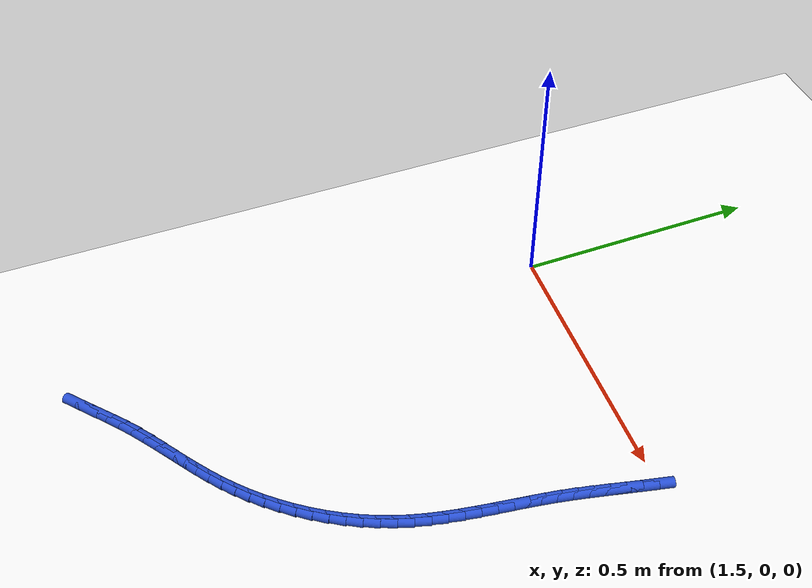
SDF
<sdf version="1.6">
 <world name="default">
  <model name="ground_plane">
   <static>1</static>
   <link name="link">
    <collision name="collision">
     <geometry><plane><normal>0 0 1</normal><size>100 100</size></plane></geometry>
     <surface><friction><ode><mu>100</mu><mu2>50</mu2></ode></friction></surface>
    </collision>
    <visual name="visual">
     <cast_shadows>0</cast_shadows>
     <geometry><plane><normal>0 0 1</normal><size>100 100</size></plane></geometry>
     <material>
      <script><uri>file://media/materials/scripts/gazebo.material</uri><name>Gazebo/WhiteGlow</name></script>
     </material>
    </visual>
   </link>
  </model>
  <model name="line">
   <link name="link_116">
    <pose>2.0480571740696454 -0.013648288597671651 0.01 0 1.57 1.3446775464707388</pose>
    <collision name="collision">
     <geometry><cylinder><radius>0.01</radius><length>0.08</length></cylinder></geometry>
    </collision>
    <visual name="visual">
     <material>
      <script><name>Gazebo/Blue</name><uri>file://media/materials/scripts/gazebo.material</uri></script>
     </material>
     <geometry><cylinder><radius>0.01</radius><length>0.08</length></cylinder></geometry>
    </visual>
   </link>
   <link name="link_117">
    <pose>2.0416587559661163 -0.041461081610284015 0.01 0 1.57 1.3390730540408509</pose>
    <collision name="collision">
     <geometry><cylinder><radius>0.01</radius><length>0.08</length></cylinder></geometry>
    </collision>
    <visual name="visual">
     <material>
      <script><name>Gazebo/Blue</name><uri>file://media/materials/scripts/gazebo.material</uri></script>
     </material>
     <geometry><cylinder><radius>0.01</radius><length>0.08</length></cylinder></geometry>
    </visual>
   </link>
   <link name="link_118">
    <pose>2.0351001141684155 -0.06925643036525464 0.01 0 1.57 1.3393813105081425</pose>
    <collision name="collision">
     <geometry><cylinder><radius>0.01</radius><length>0.08</length></cylinder></geometry>
    </collision>
    <visual name="visual">
     <material>
      <script><name>Gazebo/Blue</name><uri>file://media/materials/scripts/gazebo.material</uri></script>
     </material>
     <geometry><cylinder><radius>0.01</radius><length>0.08</length></cylinder></geometry>
    </visual>
   </link>
   <link name="link_119">
    <pose>2.0285468888910034 -0.09706717560295709 0.01 0 1.57 1.3455939503205416</pose>
    <collision name="collision">
     <geometry><cylinder><radius>0.01</radius><length>0.08</length></cylinder></geometry>
    </collision>
    <visual name="visual">
     <material>
      <script><name>Gazebo/Blue</name><uri>file://media/materials/scripts/gazebo.material</uri></script>
     </material>
     <geometry><cylinder><radius>0.01</radius><length>0.08</length></cylinder></geometry>
    </visual>
   </link>
   <link name="link_120">
    <pose>2.02216472034834 -0.12492615806376432 0.01 0 1.57 1.3577083065046691</pose>
    <collision name="collision">
     <geometry><cylinder><radius>0.01</radius><length>0.08</length></cylinder></geometry>
    </collision>
    <visual name="visual">
     <material>
      <script><name>Gazebo/Blue</name><uri>file://media/materials/scripts/gazebo.material</uri></script>
     </material>
     <geometry><cylinder><radius>0.01</radius><length>0.08</length></cylinder></geometry>
    </visual>
   </link>
   <link name="link_121">
    <pose>2.0161192487548862 -0.15286621848804924 0.01 0 1.57 1.3757191397063155</pose>
    <collision name="collision">
     <geometry><cylinder><radius>0.01</radius><length>0.08</length></cylinder></geometry>
    </collision>
    <visual name="visual">
     <material>
      <script><name>Gazebo/Blue</name><uri>file://media/materials/scripts/gazebo.material</uri></script>
     </material>
     <geometry><cylinder><radius>0.01</radius><length>0.08</length></cylinder></geometry>
    </visual>
   </link>
   <link name="link_122">
    <pose>2.010576065039591 -0.18092018661406634 0.01 0 1.57 1.3966491084667396</pose>
    <collision name="collision">
     <geometry><cylinder><radius>0.01</radius><length>0.08</length></cylinder></geometry>
    </collision>
    <visual name="visual">
     <material>
      <script><name>Gazebo/Blue</name><uri>file://media/materials/scripts/gazebo.material</uri></script>
     </material>
     <geometry><cylinder><radius>0.01</radius><length>0.08</length></cylinder></geometry>
    </visual>
   </link>
   <link name="link_123">
    <pose>2.005617985230197 -0.20910241414621492 0.01 0 1.57 1.411480942432256</pose>
    <collision name="collision">
     <geometry><cylinder><radius>0.01</radius><length>0.08</length></cylinder></geometry>
    </collision>
    <visual name="visual">
     <material>
      <script><name>Gazebo/Blue</name><uri>file://media/materials/scripts/gazebo.material</uri></script>
     </material>
     <geometry><cylinder><radius>0.01</radius><length>0.08</length></cylinder></geometry>
    </visual>
   </link>
   <link name="link_124">
    <pose>2.001075869725253 -0.2373710081473719 0.01 0 1.57 1.4185322276476682</pose>
    <collision name="collision">
     <geometry><cylinder><radius>0.01</radius><length>0.08</length></cylinder></geometry>
    </collision>
    <visual name="visual">
     <material>
      <script><name>Gazebo/Blue</name><uri>file://media/materials/scripts/gazebo.material</uri></script>
     </material>
     <geometry><cylinder><radius>0.01</radius><length>0.08</length></cylinder></geometry>
    </visual>
   </link>
   <link name="link_125">
    <pose>1.996732813906843 -0.2656734129846167 0.01 0 1.57 1.4178165346337697</pose>
    <collision name="collision">
     <geometry><cylinder><radius>0.01</radius><length>0.08</length></cylinder></geometry>
    </collision>
    <visual name="visual">
     <material>
      <script><name>Gazebo/Blue</name><uri>file://media/materials/scripts/gazebo.material</uri></script>
     </material>
     <geometry><cylinder><radius>0.01</radius><length>0.08</length></cylinder></geometry>
    </visual>
   </link>
   <link name="link_126">
    <pose>1.992371913157055 -0.29395707302502994 0.01 0 1.57 1.409319678204846</pose>
    <collision name="collision">
     <geometry><cylinder><radius>0.01</radius><length>0.08</length></cylinder></geometry>
    </collision>
    <visual name="visual">
     <material>
      <script><name>Gazebo/Blue</name><uri>file://media/materials/scripts/gazebo.material</uri></script>
     </material>
     <geometry><cylinder><radius>0.01</radius><length>0.08</length></cylinder></geometry>
    </visual>
   </link>
   <link name="link_127">
    <pose>1.9877762628579747 -0.32216943263568953 0.01 0 1.57 1.3930008733599932</pose>
    <collision name="collision">
     <geometry><cylinder><radius>0.01</radius><length>0.08</length></cylinder></geometry>
    </collision>
    <visual name="visual">
     <material>
      <script><name>Gazebo/Blue</name><uri>file://media/materials/scripts/gazebo.material</uri></script>
     </material>
     <geometry><cylinder><radius>0.01</radius><length>0.08</length></cylinder></geometry>
    </visual>
   </link>
   <link name="link_128">
    <pose>1.9827289583916892 -0.350257936183676 0.01 0 1.57 1.368808003983196</pose>
    <collision name="collision">
     <geometry><cylinder><radius>0.01</radius><length>0.08</length></cylinder></geometry>
    </collision>
    <visual name="visual">
     <material>
      <script><name>Gazebo/Blue</name><uri>file://media/materials/scripts/gazebo.material</uri></script>
     </material>
     <geometry><cylinder><radius>0.01</radius><length>0.08</length></cylinder></geometry>
    </visual>
   </link>
   <link name="link_129">
    <pose>1.9770130951402836 -0.378170028036069 0.01 0 1.57 1.3367076810628549</pose>
    <collision name="collision">
     <geometry><cylinder><radius>0.01</radius><length>0.08</length></cylinder></geometry>
    </collision>
    <visual name="visual">
     <material>
      <script><name>Gazebo/Blue</name><uri>file://media/materials/scripts/gazebo.material</uri></script>
     </material>
     <geometry><cylinder><radius>0.01</radius><length>0.08</length></cylinder></geometry>
    </visual>
   </link>
   <link name="link_130">
    <pose>1.970411768485845 -0.4058531525599479 0.01 0 1.57 1.2967305307426575</pose>
    <collision name="collision">
     <geometry><cylinder><radius>0.01</radius><length>0.08</length></cylinder></geometry>
    </collision>
    <visual name="visual">
     <material>
      <script><name>Gazebo/Blue</name><uri>file://media/materials/scripts/gazebo.material</uri></script>
     </material>
     <geometry><cylinder><radius>0.01</radius><length>0.08</length></cylinder></geometry>
    </visual>
   </link>
   <link name="link_131">
    <pose>1.9627080738104599 -0.43325475412239334 0.01 0 1.57 1.249053202915941</pose>
    <collision name="collision">
     <geometry><cylinder><radius>0.01</radius><length>0.08</length></cylinder></geometry>
    </collision>
    <visual name="visual">
     <material>
      <script><name>Gazebo/Blue</name><uri>file://media/materials/scripts/gazebo.material</uri></script>
     </material>
     <geometry><cylinder><radius>0.01</radius><length>0.08</length></cylinder></geometry>
    </visual>
   </link>
   <link name="link_132">
    <pose>1.953685799884813 -0.4603222463159385 0.01 0 1.57 1.196932090145351</pose>
    <collision name="collision">
     <geometry><cylinder><radius>0.01</radius><length>0.08</length></cylinder></geometry>
    </collision>
    <visual name="visual">
     <material>
      <script><name>Gazebo/Blue</name><uri>file://media/materials/scripts/gazebo.material</uri></script>
     </material>
     <geometry><cylinder><radius>0.01</radius><length>0.08</length></cylinder></geometry>
    </visual>
   </link>
   <link name="link_133">
    <pose>1.943220102904832 -0.4869989875886677 0.01 0 1.57 1.146270084718126</pose>
    <collision name="collision">
     <geometry><cylinder><radius>0.01</radius><length>0.08</length></cylinder></geometry>
    </collision>
    <visual name="visual">
     <material>
      <script><name>Gazebo/Blue</name><uri>file://media/materials/scripts/gazebo.material</uri></script>
     </material>
     <geometry><cylinder><radius>0.01</radius><length>0.08</length></cylinder></geometry>
    </visual>
   </link>
   <link name="link_134">
    <pose>1.9313677534767062 -0.5132202758280641 0.01 0 1.57 1.097524608506634</pose>
    <collision name="collision">
     <geometry><cylinder><radius>0.01</radius><length>0.08</length></cylinder></geometry>
    </collision>
    <visual name="visual">
     <material>
      <script><name>Gazebo/Blue</name><uri>file://media/materials/scripts/gazebo.material</uri></script>
     </material>
     <geometry><cylinder><radius>0.01</radius><length>0.08</length></cylinder></geometry>
    </visual>
   </link>
   <link name="link_135">
    <pose>1.918206981858228 -0.5389204564816489 0.01 0 1.57 1.0504371796996532</pose>
    <collision name="collision">
     <geometry><cylinder><radius>0.01</radius><length>0.08</length></cylinder></geometry>
    </collision>
    <visual name="visual">
     <material>
      <script><name>Gazebo/Blue</name><uri>file://media/materials/scripts/gazebo.material</uri></script>
     </material>
     <geometry><cylinder><radius>0.01</radius><length>0.08</length></cylinder></geometry>
    </visual>
   </link>
   <link name="link_136">
    <pose>1.9038160183071884 -0.5640338749969408 0.01 0 1.57 1.0047415058621814</pose>
    <collision name="collision">
     <geometry><cylinder><radius>0.01</radius><length>0.08</length></cylinder></geometry>
    </collision>
    <visual name="visual">
     <material>
      <script><name>Gazebo/Blue</name><uri>file://media/materials/scripts/gazebo.material</uri></script>
     </material>
     <geometry><cylinder><radius>0.01</radius><length>0.08</length></cylinder></geometry>
    </visual>
   </link>
   <link name="link_137">
    <pose>1.8882730930813785 -0.588494876821461 0.01 0 1.57 0.9601663285799223</pose>
    <collision name="collision">
     <geometry><cylinder><radius>0.01</radius><length>0.08</length></cylinder></geometry>
    </collision>
    <visual name="visual">
     <material>
      <script><name>Gazebo/Blue</name><uri>file://media/materials/scripts/gazebo.material</uri></script>
     </material>
     <geometry><cylinder><radius>0.01</radius><length>0.08</length></cylinder></geometry>
    </visual>
   </link>
   <link name="link_138">
    <pose>1.8716564364385904 -0.6122378074027297 0.01 0 1.57 0.9164365786708006</pose>
    <collision name="collision">
     <geometry><cylinder><radius>0.01</radius><length>0.08</length></cylinder></geometry>
    </collision>
    <visual name="visual">
     <material>
      <script><name>Gazebo/Blue</name><uri>file://media/materials/scripts/gazebo.material</uri></script>
     </material>
     <geometry><cylinder><radius>0.01</radius><length>0.08</length></cylinder></geometry>
    </visual>
   </link>
   <link name="link_139">
    <pose>1.8540442786366145 -0.6351970121882675 0.01 0 1.57 0.8732731795317474</pose>
    <collision name="collision">
     <geometry><cylinder><radius>0.01</radius><length>0.08</length></cylinder></geometry>
    </collision>
    <visual name="visual">
     <material>
      <script><name>Gazebo/Blue</name><uri>file://media/materials/scripts/gazebo.material</uri></script>
     </material>
     <geometry><cylinder><radius>0.01</radius><length>0.08</length></cylinder></geometry>
    </visual>
   </link>
   <link name="link_140">
    <pose>1.8355148499332428 -0.6573068366255951 0.01 0 1.57 0.830391777255688</pose>
    <collision name="collision">
     <geometry><cylinder><radius>0.01</radius><length>0.08</length></cylinder></geometry>
    </collision>
    <visual name="visual">
     <material>
      <script><name>Gazebo/Blue</name><uri>file://media/materials/scripts/gazebo.material</uri></script>
     </material>
     <geometry><cylinder><radius>0.01</radius><length>0.08</length></cylinder></geometry>
    </visual>
   </link>
   <link name="link_141">
    <pose>1.816146380586267 -0.6785016261622316 0.01 0 1.57 0.7875006205065287</pose>
    <collision name="collision">
     <geometry><cylinder><radius>0.01</radius><length>0.08</length></cylinder></geometry>
    </collision>
    <visual name="visual">
     <material>
      <script><name>Gazebo/Blue</name><uri>file://media/materials/scripts/gazebo.material</uri></script>
     </material>
     <geometry><cylinder><radius>0.01</radius><length>0.08</length></cylinder></geometry>
    </visual>
   </link>
   <link name="link_142">
    <pose>1.7960171008534775 -0.698715726245698 0.01 0 1.57 0.7445202419966661</pose>
    <collision name="collision">
     <geometry><cylinder><radius>0.01</radius><length>0.08</length></cylinder></geometry>
    </collision>
    <visual name="visual">
     <material>
      <script><name>Gazebo/Blue</name><uri>file://media/materials/scripts/gazebo.material</uri></script>
     </material>
     <geometry><cylinder><radius>0.01</radius><length>0.08</length></cylinder></geometry>
    </visual>
   </link>
   <link name="link_143">
    <pose>1.7752059005710057 -0.7178914337799862 0.01 0 1.57 0.7059278376286199</pose>
    <collision name="collision">
     <geometry><cylinder><radius>0.01</radius><length>0.08</length></cylinder></geometry>
    </collision>
    <visual name="visual">
     <material>
      <script><name>Gazebo/Blue</name><uri>file://media/materials/scripts/gazebo.material</uri></script>
     </material>
     <geometry><cylinder><radius>0.01</radius><length>0.08</length></cylinder></geometry>
    </visual>
   </link>
   <link name="link_144">
    <pose>1.753805260947676 -0.7361348946039356 0.01 0 1.57 0.67650545885691</pose>
    <collision name="collision">
     <geometry><cylinder><radius>0.01</radius><length>0.08</length></cylinder></geometry>
    </collision>
    <visual name="visual">
     <material>
      <script><name>Gazebo/Blue</name><uri>file://media/materials/scripts/gazebo.material</uri></script>
     </material>
     <geometry><cylinder><radius>0.01</radius><length>0.08</length></cylinder></geometry>
    </visual>
   </link>
   <link name="link_145">
    <pose>1.7319204312735068 -0.7537061784131096 0.01 0 1.57 0.656810564720015</pose>
    <collision name="collision">
     <geometry><cylinder><radius>0.01</radius><length>0.08</length></cylinder></geometry>
    </collision>
    <visual name="visual">
     <material>
      <script><name>Gazebo/Blue</name><uri>file://media/materials/scripts/gazebo.material</uri></script>
     </material>
     <geometry><cylinder><radius>0.01</radius><length>0.08</length></cylinder></geometry>
    </visual>
   </link>
   <link name="link_146">
    <pose>1.7096571555569813 -0.7708713189139087 0.01 0 1.57 0.6469863929144598</pose>
    <collision name="collision">
     <geometry><cylinder><radius>0.01</radius><length>0.08</length></cylinder></geometry>
    </collision>
    <visual name="visual">
     <material>
      <script><name>Gazebo/Blue</name><uri>file://media/materials/scripts/gazebo.material</uri></script>
     </material>
     <geometry><cylinder><radius>0.01</radius><length>0.08</length></cylinder></geometry>
    </visual>
   </link>
   <link name="link_147">
    <pose>1.687121177806585 -0.7878963498127336 0.01 0 1.57 0.6469806157101413</pose>
    <collision name="collision">
     <geometry><cylinder><radius>0.01</radius><length>0.08</length></cylinder></geometry>
    </collision>
    <visual name="visual">
     <material>
      <script><name>Gazebo/Blue</name><uri>file://media/materials/scripts/gazebo.material</uri></script>
     </material>
     <geometry><cylinder><radius>0.01</radius><length>0.08</length></cylinder></geometry>
    </visual>
   </link>
   <link name="link_148">
    <pose>1.6644182420308016 -0.8050473048159851 0.01 0 1.57 0.6565789549738154</pose>
    <collision name="collision">
     <geometry><cylinder><radius>0.01</radius><length>0.08</length></cylinder></geometry>
    </collision>
    <visual name="visual">
     <material>
      <script><name>Gazebo/Blue</name><uri>file://media/materials/scripts/gazebo.material</uri></script>
     </material>
     <geometry><cylinder><radius>0.01</radius><length>0.08</length></cylinder></geometry>
    </visual>
   </link>
   <link name="link_149">
    <pose>1.6416540922381175 -0.8225902176300628 0.01 0 1.57 0.675417129306978</pose>
    <collision name="collision">
     <geometry><cylinder><radius>0.01</radius><length>0.08</length></cylinder></geometry>
    </collision>
    <visual name="visual">
     <material>
      <script><name>Gazebo/Blue</name><uri>file://media/materials/scripts/gazebo.material</uri></script>
     </material>
     <geometry><cylinder><radius>0.01</radius><length>0.08</length></cylinder></geometry>
    </visual>
   </link>
   <link name="link_150">
    <pose>1.618934472437017 -0.8407911219613675 0.01 0 1.57 0.702973922362344</pose>
    <collision name="collision">
     <geometry><cylinder><radius>0.01</radius><length>0.08</length></cylinder></geometry>
    </collision>
    <visual name="visual">
     <material>
      <script><name>Gazebo/Blue</name><uri>file://media/materials/scripts/gazebo.material</uri></script>
     </material>
     <geometry><cylinder><radius>0.01</radius><length>0.08</length></cylinder></geometry>
    </visual>
   </link>
   <link name="link_151">
    <pose>1.5963651252628401 -0.8599160466949335 0.01 0 1.57 0.734172276205394</pose>
    <collision name="collision">
     <geometry><cylinder><radius>0.01</radius><length>0.08</length></cylinder></geometry>
    </collision>
    <visual name="visual">
     <material>
      <script><name>Gazebo/Blue</name><uri>file://media/materials/scripts/gazebo.material</uri></script>
     </material>
     <geometry><cylinder><radius>0.01</radius><length>0.08</length></cylinder></geometry>
    </visual>
   </link>
   <link name="link_152">
    <pose>1.5740114421762392 -0.8800893401635391 0.01 0 1.57 0.7532335687389121</pose>
    <collision name="collision">
     <geometry><cylinder><radius>0.01</radius><length>0.08</length></cylinder></geometry>
    </collision>
    <visual name="visual">
     <material>
      <script><name>Gazebo/Blue</name><uri>file://media/materials/scripts/gazebo.material</uri></script>
     </material>
     <geometry><cylinder><radius>0.01</radius><length>0.08</length></cylinder></geometry>
    </visual>
   </link>
   <link name="link_153">
    <pose>1.5517928195175956 -0.9009227344149241 0.01 0 1.57 0.757437375971799</pose>
    <collision name="collision">
     <geometry><cylinder><radius>0.01</radius><length>0.08</length></cylinder></geometry>
    </collision>
    <visual name="visual">
     <material>
      <script><name>Gazebo/Blue</name><uri>file://media/materials/scripts/gazebo.material</uri></script>
     </material>
     <geometry><cylinder><radius>0.01</radius><length>0.08</length></cylinder></geometry>
    </visual>
   </link>
   <link name="link_154">
    <pose>1.5295956457720974 -0.9219120647183766 0.01 0 1.57 0.7470238615180006</pose>
    <collision name="collision">
     <geometry><cylinder><radius>0.01</radius><length>0.08</length></cylinder></geometry>
    </collision>
    <visual name="visual">
     <material>
      <script><name>Gazebo/Blue</name><uri>file://media/materials/scripts/gazebo.material</uri></script>
     </material>
     <geometry><cylinder><radius>0.01</radius><length>0.08</length></cylinder></geometry>
    </visual>
   </link>
  </model>
 </world>
</sdf>
